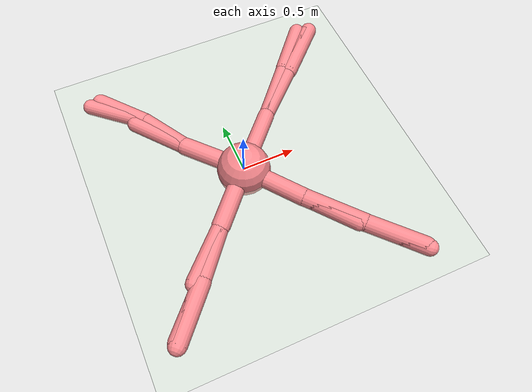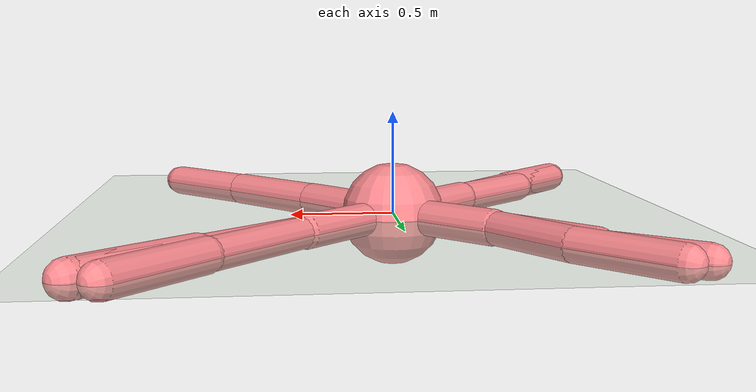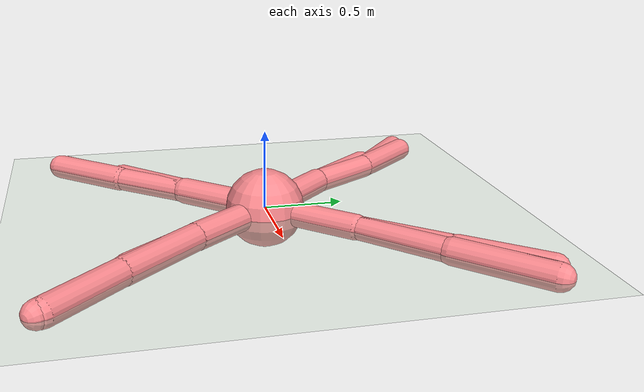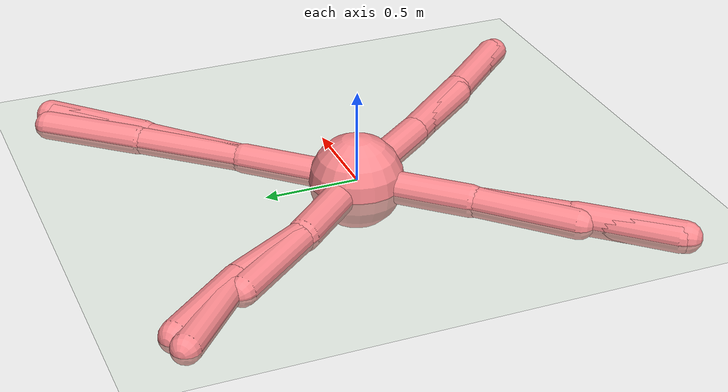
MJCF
<mujoco model="ant">
  <compiler angle="degree" coordinate="global" inertiafromgeom="true"/>
  <option integrator="RK4" timestep="0.01"/>
  <default>
    <joint armature="1" damping="1" limited="true"/>
    <geom conaffinity="0" condim="3" density="5.0" friction="1 0.5 0.5" margin="0.01" rgba=".98 .54 .56 1."/>
  </default>
  <visual>
    <headlight ambient=".1 .1 .1" diffuse=".6 .6 .6" specular="0.3 0.3 0.3"/>
    <map znear=".01"/>
    <quality shadowsize="16384"/>
  </visual>
  <worldbody>
    <light cutoff="100" diffuse="1 1 1" dir="-0 0 -1.3" directional="true" exponent="1" pos="0 0 1.3" specular=".1 .1 .1"/>
    <geom conaffinity="1" condim="3" name="floor" pos="0 0 0" rgba="0.8 0.9 0.8 1" size="200 200 .125" type="plane" material="grid_new"/>
    <body name="0" pos="0 0 0">
      <camera name="track" mode="trackcom" pos="0 -3 0.3" xyaxes="1 0 0 0 0 1"/>
      <geom pos="0 0 0" size="0.25" type="sphere"/>
      <joint armature="0" damping="0" limited="false" margin="0.01" name="0_joint" pos="0 0 0" type="free"/>
      <body name="1" pos="0 0 0">
        <joint axis="-0.707107 0.707107 0" name="1_joint" pos="0 0 0" range="-30 30" type="hinge"/>
        <geom fromto="-0.000311 -0.000331 0 0.440712 0.468471 0" size="0.079613" type="capsule"/>
        <body name="11" pos="0.440712 0.468471 0">
          <joint axis="-0.707107 0.707107 0" name="11_joint" pos="0.440712 0.468471 0" range="-30 30" type="hinge"/>
          <geom fromto="0.440494 0.468269 0 0.887196 0.884037 0" size="0.073334" type="capsule"/>
          <body name="111" pos="0.887196 0.884037 0">
            <joint axis="-0.707107 0.707107 0" name="111_joint" pos="0.887196 0.884037 0" range="-30 30" type="hinge"/>
            <geom fromto="0.887111 0.883955 0 1.322375 1.304779 0" size="0.082228" type="capsule"/>
          </body>
          <body name="211" pos="0.887196 0.884037 0">
            <joint axis="-0.707107 0.707107 0" name="211_joint" pos="0.887196 0.884037 0" range="-30 30" type="hinge"/>
            <geom fromto="0.887134 0.883976 0 1.298217 1.287214 0" size="0.081297" type="capsule"/>
          </body>
        </body>
        <body name="21" pos="0.440712 0.468471 0">
          <joint axis="-0.707107 0.707107 0" name="21_joint" pos="0.440712 0.468471 0" range="-30 30" type="hinge"/>
          <geom fromto="0.440576 0.468316 0 0.84747 0.932958 0" size="0.073069" type="capsule"/>
          <body name="121" pos="0.84747 0.932958 0">
            <joint axis="-0.707107 0.707107 0" name="121_joint" pos="0.84747 0.932958 0" range="-30 30" type="hinge"/>
            <geom fromto="0.84639 0.931698 0 1.201118 1.345744 0" size="0.078045" type="capsule"/>
          </body>
        </body>
      </body>
      <body name="2" pos="0 0 0">
        <joint axis="-0.707107 -0.707107 0" name="2_joint" pos="0 0 0" range="-30 30" type="hinge"/>
        <geom fromto="0.000235 -0.000256 0 -0.412461 0.450403 0" size="0.086263" type="capsule"/>
        <body name="12" pos="-0.412461 0.450403 0">
          <joint axis="-0.707107 -0.707107 0" name="12_joint" pos="-0.412461 0.450403 0" range="-30 30" type="hinge"/>
          <geom fromto="-0.412008 0.449643 0 -0.666251 0.875991 0" size="0.079783" type="capsule"/>
          <body name="112" pos="-0.666251 0.875991 0">
            <joint axis="-0.707107 -0.707107 0" name="112_joint" pos="-0.666251 0.875991 0" range="-30 30" type="hinge"/>
            <geom fromto="-0.666148 0.875902 0 -1.104019 1.256089 0" size="0.075371" type="capsule"/>
          </body>
          <body name="212" pos="-0.666251 0.875991 0">
            <joint axis="-0.707107 -0.707107 0" name="212_joint" pos="-0.666251 0.875991 0" range="-30 30" type="hinge"/>
            <geom fromto="-0.666229 0.875965 0 -0.999934 1.27389 0" size="0.080119" type="capsule"/>
          </body>
        </body>
        <body name="22" pos="-0.412461 0.450403 0">
          <joint axis="-0.707107 -0.707107 0" name="22_joint" pos="-0.412461 0.450403 0" range="-30 30" type="hinge"/>
          <geom fromto="-0.41245 0.45039 0 -0.766289 0.884882 0" size="0.077659" type="capsule"/>
        </body>
      </body>
      <body name="3" pos="0 0 0">
        <joint axis="0.707107 -0.707107 0" name="3_joint" pos="0 0 0" range="-30 30" type="hinge"/>
        <geom fromto="0.000037 0.00004 0 -0.418687 -0.457794 0" size="0.085627" type="capsule"/>
        <body name="13" pos="-0.418687 -0.457794 0">
          <joint axis="0.707107 -0.707107 0" name="13_joint" pos="-0.418687 -0.457794 0" range="-30 30" type="hinge"/>
          <geom fromto="-0.418661 -0.457763 0 -0.756881 -0.865076 0" size="0.076941" type="capsule"/>
          <body name="113" pos="-0.756881 -0.865076 0">
            <joint axis="0.707107 -0.707107 0" name="113_joint" pos="-0.756881 -0.865076 0" range="-30 30" type="hinge"/>
            <geom fromto="-0.756792 -0.864981 0 -1.119389 -1.253733 0" size="0.078736" type="capsule"/>
          </body>
          <body name="213" pos="-0.756881 -0.865076 0">
            <joint axis="0.707107 -0.707107 0" name="213_joint" pos="-0.756881 -0.865076 0" range="-30 30" type="hinge"/>
            <geom fromto="-0.756868 -0.865062 0 -1.124535 -1.276716 0" size="0.082262" type="capsule"/>
          </body>
        </body>
        <body name="23" pos="-0.418687 -0.457794 0">
          <joint axis="0.707107 -0.707107 0" name="23_joint" pos="-0.418687 -0.457794 0" range="-30 30" type="hinge"/>
          <geom fromto="-0.418686 -0.457794 0 -0.82078 -0.853656 0" size="0.079269" type="capsule"/>
        </body>
      </body>
      <body name="4" pos="0 0 0">
        <joint axis="0.707107 0.707107 0" name="4_joint" pos="0 0 0" range="-30 30" type="hinge"/>
        <geom fromto="-0.000005 0.000007 0 0.378277 -0.489778 0" size="0.086118" type="capsule"/>
        <body name="14" pos="0.378277 -0.489778 0">
          <joint axis="0.707107 0.707107 0" name="14_joint" pos="0.378277 -0.489778 0" range="-30 30" type="hinge"/>
          <geom fromto="0.378207 -0.489698 0 0.765576 -0.936653 0" size="0.084406" type="capsule"/>
          <body name="114" pos="0.765576 -0.936653 0">
            <joint axis="0.707107 0.707107 0" name="114_joint" pos="0.765576 -0.936653 0" range="-30 30" type="hinge"/>
            <geom fromto="0.76556 -0.936636 0 1.154562 -1.363818 0" size="0.078474" type="capsule"/>
          </body>
          <body name="214" pos="0.765576 -0.936653 0">
            <joint axis="0.707107 0.707107 0" name="214_joint" pos="0.765576 -0.936653 0" range="-30 30" type="hinge"/>
            <geom fromto="0.765574 -0.936652 0 1.140844 -1.338774 0" size="0.082614" type="capsule"/>
          </body>
        </body>
        <body name="24" pos="0.378277 -0.489778 0">
          <joint axis="0.707107 0.707107 0" name="24_joint" pos="0.378277 -0.489778 0" range="-30 30" type="hinge"/>
          <geom fromto="0.378106 -0.489567 0 0.719086 -0.912742 0" size="0.080683" type="capsule"/>
        </body>
      </body>
    </body>
  </worldbody>
  <actuator>
    <motor ctrllimited="true" ctrlrange="-1.0 1.0" joint="1_joint" gear="153.869223" name="1_joint"/>
    <motor ctrllimited="true" ctrlrange="-1.0 1.0" joint="2_joint" gear="77.213881" name="2_joint"/>
    <motor ctrllimited="true" ctrlrange="-1.0 1.0" joint="3_joint" gear="72.401478" name="3_joint"/>
    <motor ctrllimited="true" ctrlrange="-1.0 1.0" joint="4_joint" gear="145.136566" name="4_joint"/>
    <motor ctrllimited="true" ctrlrange="-1.0 1.0" joint="11_joint" gear="104.077178" name="11_joint"/>
    <motor ctrllimited="true" ctrlrange="-1.0 1.0" joint="12_joint" gear="102.10857" name="12_joint"/>
    <motor ctrllimited="true" ctrlrange="-1.0 1.0" joint="13_joint" gear="93.164862" name="13_joint"/>
    <motor ctrllimited="true" ctrlrange="-1.0 1.0" joint="14_joint" gear="91.871509" name="14_joint"/>
    <motor ctrllimited="true" ctrlrange="-1.0 1.0" joint="21_joint" gear="97.82581" name="21_joint"/>
    <motor ctrllimited="true" ctrlrange="-1.0 1.0" joint="22_joint" gear="174.237841" name="22_joint"/>
    <motor ctrllimited="true" ctrlrange="-1.0 1.0" joint="23_joint" gear="150.764701" name="23_joint"/>
    <motor ctrllimited="true" ctrlrange="-1.0 1.0" joint="24_joint" gear="99.234196" name="24_joint"/>
    <motor ctrllimited="true" ctrlrange="-1.0 1.0" joint="111_joint" gear="134.474278" name="111_joint"/>
    <motor ctrllimited="true" ctrlrange="-1.0 1.0" joint="112_joint" gear="103.554867" name="112_joint"/>
    <motor ctrllimited="true" ctrlrange="-1.0 1.0" joint="113_joint" gear="148.62098" name="113_joint"/>
    <motor ctrllimited="true" ctrlrange="-1.0 1.0" joint="114_joint" gear="109.323133" name="114_joint"/>
    <motor ctrllimited="true" ctrlrange="-1.0 1.0" joint="211_joint" gear="138.606573" name="211_joint"/>
    <motor ctrllimited="true" ctrlrange="-1.0 1.0" joint="213_joint" gear="131.274146" name="213_joint"/>
    <motor ctrllimited="true" ctrlrange="-1.0 1.0" joint="214_joint" gear="121.916761" name="214_joint"/>
    <motor ctrllimited="true" ctrlrange="-1.0 1.0" joint="121_joint" gear="118.204068" name="121_joint"/>
    <motor ctrllimited="true" ctrlrange="-1.0 1.0" joint="212_joint" gear="146.033139" name="212_joint"/>
  </actuator>
  <asset>
    <texture type="skybox" builtin="gradient" rgb1=".4 .5 .6" rgb2="0 0 0" width="100" height="100"/>
    <texture builtin="flat" height="1278" mark="cross" markrgb="1 1 1" name="texgeom" random="0.01" rgb1="0.8 0.6 0.4" rgb2="0.8 0.6 0.4" type="cube" width="127"/>
    <texture builtin="checker" height="100" name="texplane" rgb1="0 0 0" rgb2="0.8 0.8 0.8" type="2d" width="100"/>
    <material name="MatPlane" reflectance="0.5" shininess="1" specular="1" texrepeat="60 60" texture="texplane"/>
    <material name="geom" texture="texgeom" texuniform="true"/>
    <texture name="grid_new" type="2d" builtin="checker" rgb1=".1 .3 .2" rgb2=".2 .4 .3" width="1000" height="1000" mark="none" markrgb=".8 .6 .4"/>
    <material name="grid_new" texture="grid_new" texrepeat="0.2 0.2" texuniform="true" reflectance=".2"/>
  </asset>
</mujoco>
